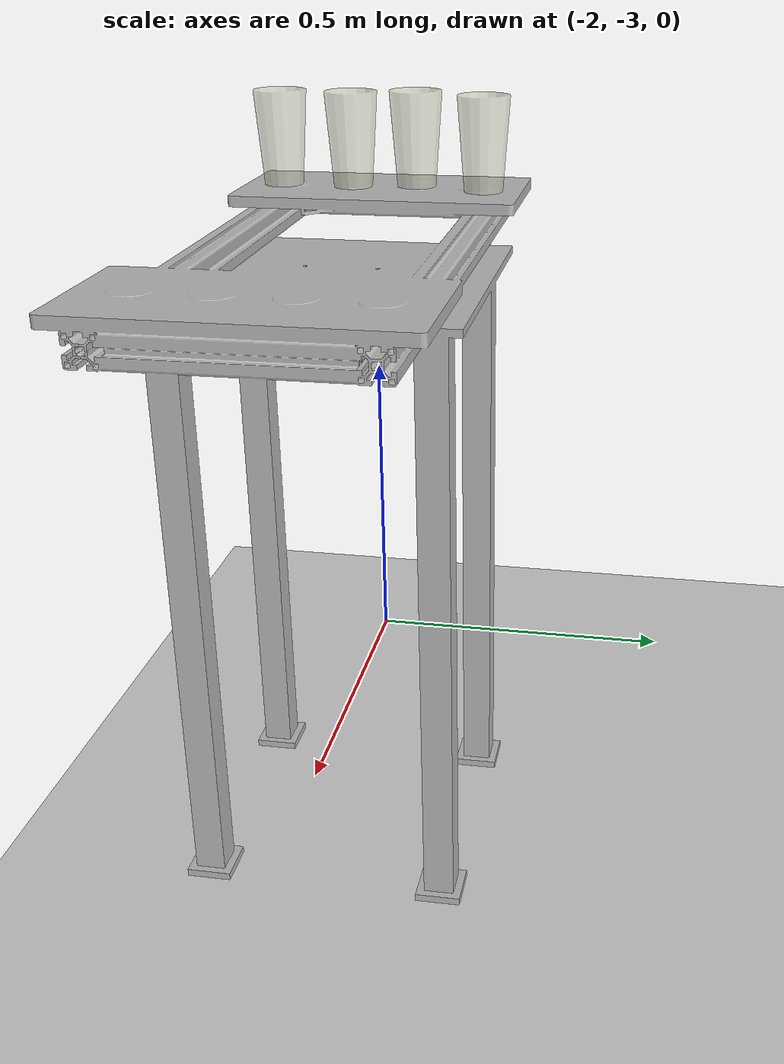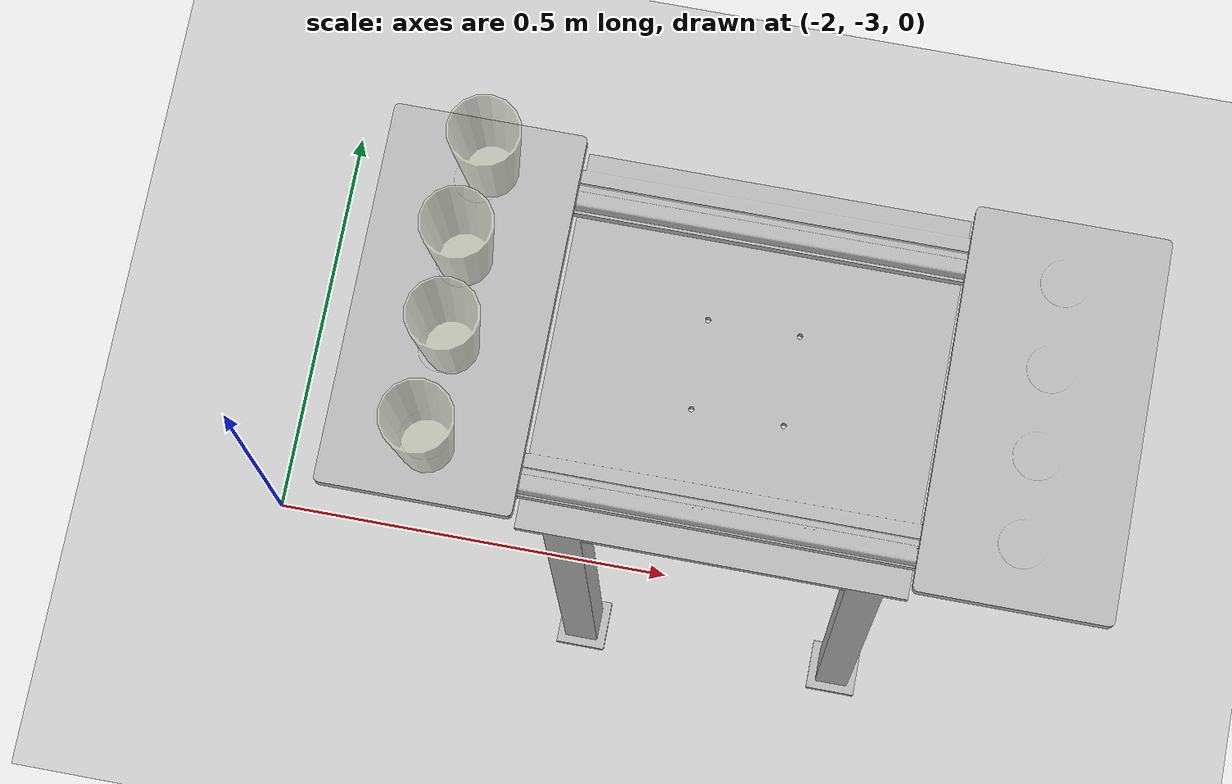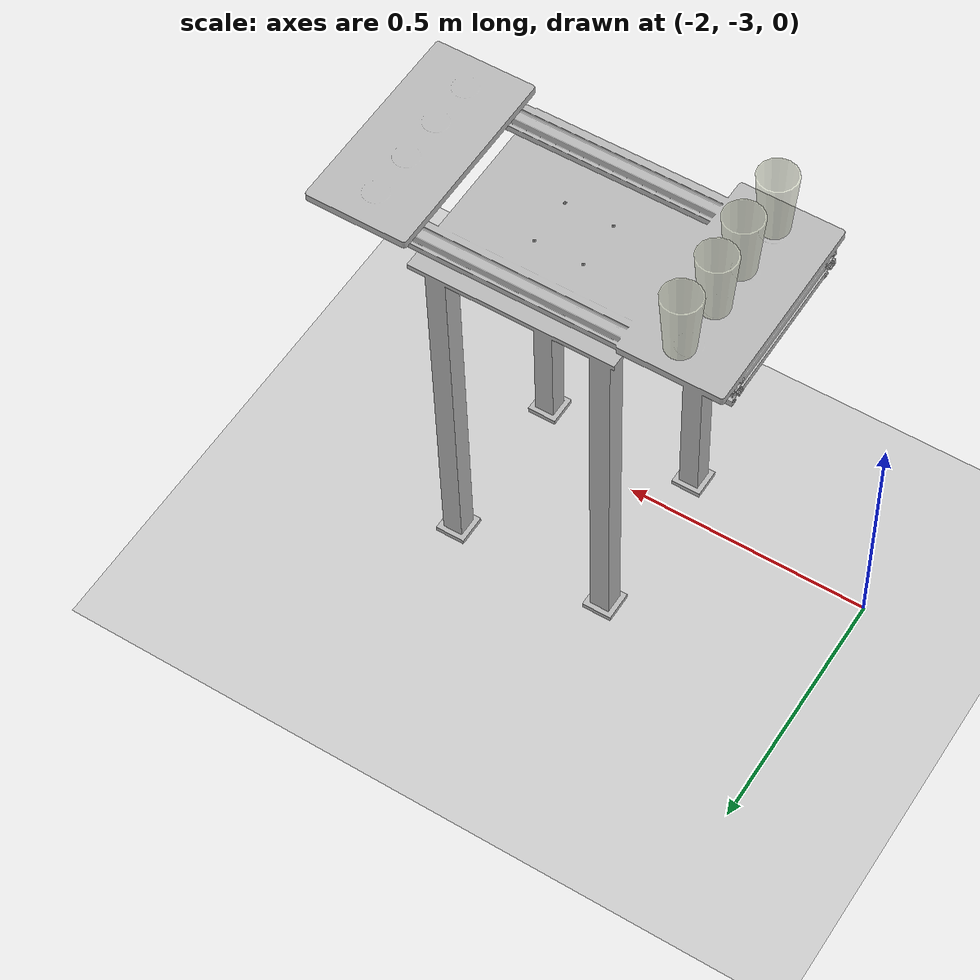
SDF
<sdf version='1.9'>
  <world name='empty'>
    <physics name='1ms' type='ignored'>
      <max_step_size>0.01</max_step_size>
      <real_time_factor>1</real_time_factor>
      <real_time_update_rate>1000</real_time_update_rate>
    </physics>
    <plugin name='gz::sim::systems::Physics' filename='ignition-gazebo-physics-system'/>
    <plugin name='gz::sim::systems::UserCommands' filename='ignition-gazebo-user-commands-system'/>
    <plugin name='gz::sim::systems::SceneBroadcaster' filename='ignition-gazebo-scene-broadcaster-system'/>
    <plugin name='gz::sim::systems::Contact' filename='ignition-gazebo-contact-system'/>
    <gravity>0 0 -9.8</gravity>
    <magnetic_field>6e-06 2.3e-05 -4.2e-05</magnetic_field>
    <atmosphere type='adiabatic'/>
    <scene>
      <ambient>0.4 0.4 0.4 1</ambient>
      <background>0.7 0.7 0.7 1</background>
      <shadows>true</shadows>
    </scene>
    <model name='ground_plane'>
      <static>true</static>
      <link name='link'>
        <collision name='collision'>
          <geometry>
            <plane>
              <normal>0 0 1</normal>
              <size>100 100</size>
            </plane>
          </geometry>
          <surface>
            <friction>
              <ode/>
            </friction>
            <bounce/>
            <contact/>
          </surface>
        </collision>
        <visual name='visual'>
          <geometry>
            <plane>
              <normal>0 0 1</normal>
              <size>100 100</size>
            </plane>
          </geometry>
          <material>
            <ambient>0.8 0.8 0.8 1</ambient>
            <diffuse>0.8 0.8 0.8 1</diffuse>
            <specular>0.8 0.8 0.8 1</specular>
          </material>
        </visual>
        <pose>0 0 0 0 -0 0</pose>
        <inertial>
          <pose>0 0 0 0 -0 0</pose>
          <mass>1</mass>
          <inertia>
            <ixx>1</ixx>
            <ixy>0</ixy>
            <ixz>0</ixz>
            <iyy>1</iyy>
            <iyz>0</iyz>
            <izz>1</izz>
          </inertia>
        </inertial>
        <enable_wind>false</enable_wind>
      </link>
      <pose>0 0 0 0 -0 0</pose>
      <self_collide>false</self_collide>
    </model>
    <model name='plastic_cup'>
      <static>false</static>
      <link name='link'>
        <pose>0 0 0.065 0 -0 0</pose>
        <collision name='collision'>
          <geometry>
            <mesh>
              <uri>file:///workspaces/robo_arm_ws/install/a3c_gazebo/share/a3c_gazebo/models/plastic_cup/model://plastic_cup/meshes/plastic_cup.dae</uri>
            </mesh>
          </geometry>
        </collision>
        <visual name='visual'>
          <geometry>
            <mesh>
              <uri>file:///workspaces/robo_arm_ws/install/a3c_gazebo/share/a3c_gazebo/models/plastic_cup/model://plastic_cup/meshes/plastic_cup.dae</uri>
            </mesh>
          </geometry>
          <transparency>0.5</transparency>
        </visual>
        <inertial>
          <pose>0 0 0 0 -0 0</pose>
          <mass>1</mass>
          <inertia>
            <ixx>1</ixx>
            <ixy>0</ixy>
            <ixz>0</ixz>
            <iyy>1</iyy>
            <iyz>0</iyz>
            <izz>1</izz>
          </inertia>
        </inertial>
        <enable_wind>false</enable_wind>
      </link>
      <pose>-1.72499 -2.87977 0.869794 0 -0 0</pose>
      <self_collide>false</self_collide>
    </model>
    <model name='Setup'>
      <static>true</static>
      <link name='link'>
        <collision name='collision'>
          <geometry>
            <mesh>
              <uri>file:///workspaces/robo_arm_ws/install/a3c_gazebo/share/a3c_gazebo/models/Setup/model://Setup/meshes/setup.dae</uri>
            </mesh>
          </geometry>
        </collision>
        <visual name='visual'>
          <geometry>
            <mesh>
              <uri>file:///workspaces/robo_arm_ws/install/a3c_gazebo/share/a3c_gazebo/models/Setup/model://Setup/meshes/setup.dae</uri>
            </mesh>
          </geometry>
        </visual>
        <pose>0 0 0 0 -0 0</pose>
        <inertial>
          <pose>0 0 0 0 -0 0</pose>
          <mass>1</mass>
          <inertia>
            <ixx>1</ixx>
            <ixy>0</ixy>
            <ixz>0</ixz>
            <iyy>1</iyy>
            <iyz>0</iyz>
            <izz>1</izz>
          </inertia>
        </inertial>
        <enable_wind>false</enable_wind>
      </link>
      <pose>-1.4289 -2.921 0.80371 1.57251 -0 0</pose>
      <self_collide>false</self_collide>
    </model>
    <model name='plastic_cup_0'>
      <static>false</static>
      <link name='link'>
        <pose>0 0 0.065 0 -0 0</pose>
        <collision name='collision'>
          <geometry>
            <mesh>
              <uri>file:///workspaces/robo_arm_ws/install/a3c_gazebo/share/a3c_gazebo/models/plastic_cup/model://plastic_cup/meshes/plastic_cup.dae</uri>
            </mesh>
          </geometry>
        </collision>
        <visual name='visual'>
          <geometry>
            <mesh>
              <uri>file:///workspaces/robo_arm_ws/install/a3c_gazebo/share/a3c_gazebo/models/plastic_cup/model://plastic_cup/meshes/plastic_cup.dae</uri>
            </mesh>
          </geometry>
          <transparency>0.5</transparency>
        </visual>
        <inertial>
          <pose>0 0 0 0 -0 0</pose>
          <mass>1</mass>
          <inertia>
            <ixx>1</ixx>
            <ixy>0</ixy>
            <ixz>0</ixz>
            <iyy>1</iyy>
            <iyz>0</iyz>
            <izz>1</izz>
          </inertia>
        </inertial>
        <enable_wind>false</enable_wind>
      </link>
      <pose>-1.7176 -2.78328 0.866338 0 -0 0</pose>
      <self_collide>false</self_collide>
    </model>
    <model name='plastic_cup_1'>
      <static>false</static>
      <link name='link'>
        <pose>0 0 0.065 0 -0 0</pose>
        <collision name='collision'>
          <geometry>
            <mesh>
              <uri>file:///workspaces/robo_arm_ws/install/a3c_gazebo/share/a3c_gazebo/models/plastic_cup/model://plastic_cup/meshes/plastic_cup.dae</uri>
            </mesh>
          </geometry>
        </collision>
        <visual name='visual'>
          <geometry>
            <mesh>
              <uri>file:///workspaces/robo_arm_ws/install/a3c_gazebo/share/a3c_gazebo/models/plastic_cup/model://plastic_cup/meshes/plastic_cup.dae</uri>
            </mesh>
          </geometry>
          <transparency>0.5</transparency>
        </visual>
        <inertial>
          <pose>0 0 0 0 -0 0</pose>
          <mass>1</mass>
          <inertia>
            <ixx>1</ixx>
            <ixy>0</ixy>
            <ixz>0</ixz>
            <iyy>1</iyy>
            <iyz>0</iyz>
            <izz>1</izz>
          </inertia>
        </inertial>
        <enable_wind>false</enable_wind>
      </link>
      <pose>-1.72039 -2.97094 0.867607 0 -0 0</pose>
      <self_collide>false</self_collide>
    </model>
    <model name='plastic_cup_2'>
      <static>false</static>
      <link name='link'>
        <pose>0 0 0.065 0 -0 0</pose>
        <collision name='collision'>
          <geometry>
            <mesh>
              <uri>file:///workspaces/robo_arm_ws/install/a3c_gazebo/share/a3c_gazebo/models/plastic_cup/model://plastic_cup/meshes/plastic_cup.dae</uri>
            </mesh>
          </geometry>
        </collision>
        <visual name='visual'>
          <geometry>
            <mesh>
              <uri>file:///workspaces/robo_arm_ws/install/a3c_gazebo/share/a3c_gazebo/models/plastic_cup/model://plastic_cup/meshes/plastic_cup.dae</uri>
            </mesh>
          </geometry>
          <transparency>0.5</transparency>
        </visual>
        <inertial>
          <pose>0 0 0 0 -0 0</pose>
          <mass>1</mass>
          <inertia>
            <ixx>1</ixx>
            <ixy>0</ixy>
            <ixz>0</ixz>
            <iyy>1</iyy>
            <iyz>0</iyz>
            <izz>1</izz>
          </inertia>
        </inertial>
        <enable_wind>false</enable_wind>
      </link>
      <pose>-1.72441 -3.07394 0.867252 0 -0 0</pose>
      <self_collide>false</self_collide>
    </model>
    <light name='sun' type='directional'>
      <pose>0 0 10 0 -0 0</pose>
      <cast_shadows>true</cast_shadows>
      <intensity>1</intensity>
      <direction>-0.5 0.1 -0.9</direction>
      <diffuse>0.8 0.8 0.8 1</diffuse>
      <specular>0.2 0.2 0.2 1</specular>
      <attenuation>
        <range>1000</range>
        <linear>0.01</linear>
        <constant>0.90000000000000002</constant>
        <quadratic>0.001</quadratic>
      </attenuation>
      <spot>
        <inner_angle>0</inner_angle>
        <outer_angle>0</outer_angle>
        <falloff>0</falloff>
      </spot>
    </light>
  </world>
</sdf>
